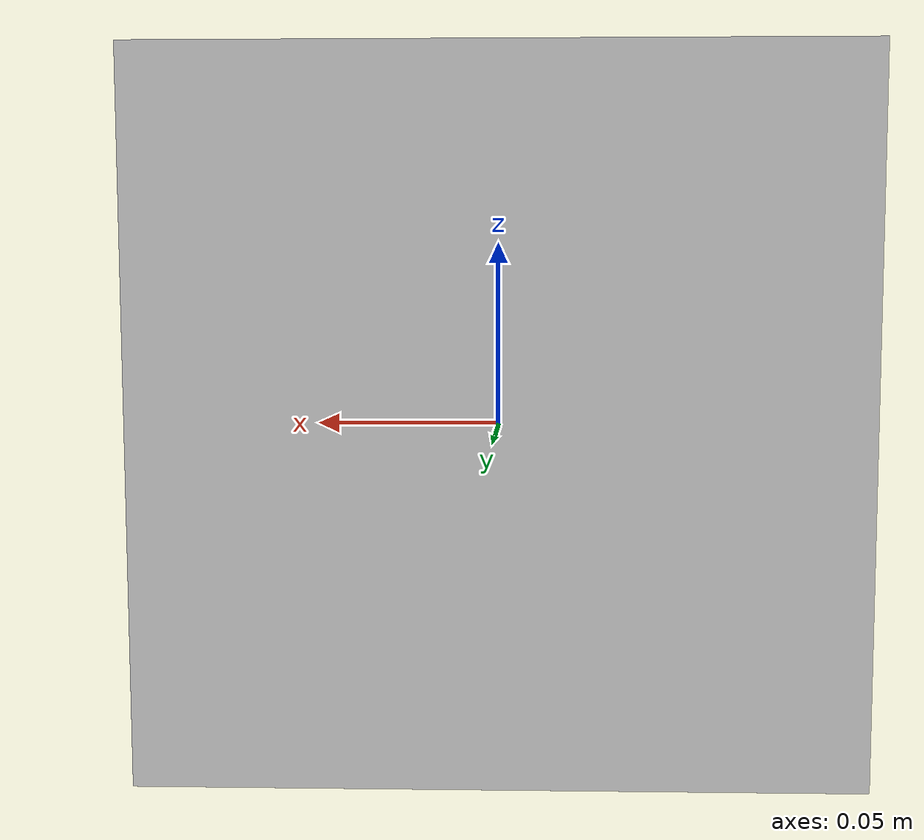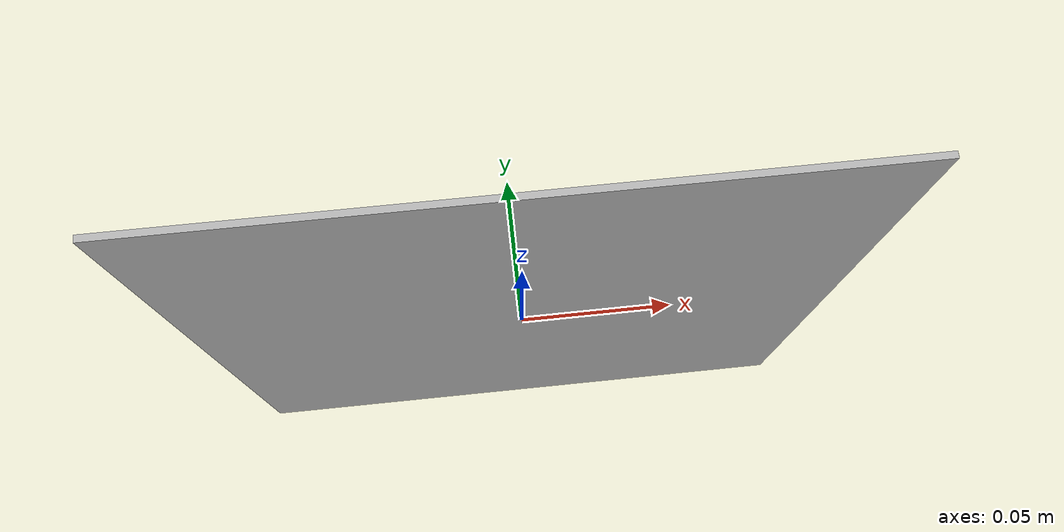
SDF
<?xml version="1.0" ?>
<sdf version="1.6">
  <model name="aruco_tag_1">
    <static>true</static>
    <link name="link">
      <pose>0 0 0 0 0 0</pose>
      <visual name="visual">
        <geometry>
          <box>
            <size>0.21 0.002 0.21</size>
          </box>
        </geometry>
        <material>
          <script>
            <uri>model://aruco_tag_1/materials/scripts</uri>
            <uri>model://aruco_tag_1/materials/textures</uri>
            <name>aruco/material_1</name>
          </script>
        </material>
      </visual>
    </link>
  </model>
</sdf>
